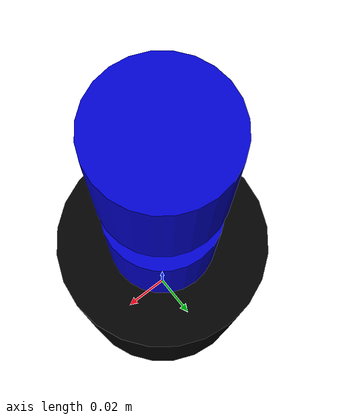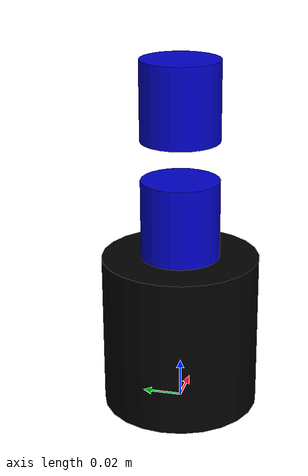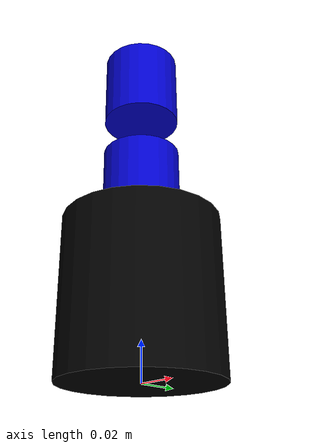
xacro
<?xml version="1.0"?>
<robot xmlns:xacro="http://www.ros.org/wiki/xacro" name="loader_motor">

    <!-- Constants -->
    <xacro:property name="PI" value="3.1415926535"/>

    <!-- Materials -->
    <material name="black">
        <color rgba="0.0 0.0 0.0 1.0"/>
    </material>
    <material name="blue">
        <color rgba="0.0 0.0 0.8 1.0"/>
    </material>

    <!-- Base Link -->
    <link name="world"/>

    <!-- Motor Mount Link -->
    <link name="motor_mount">
        <visual>
            <geometry>
                <cylinder radius="0.04" length="0.08"/>
            </geometry>
            <material name="black"/>
        </visual>
        <collision>
            <geometry>
                <cylinder radius="0.04" length="0.08"/>
            </geometry>
        </collision>
        <inertial>
            <mass value="0.5"/>
            <inertia ixx="0.001" ixy="0.0" ixz="0.0" iyy="0.001" iyz="0.0" izz="0.001"/>
        </inertial>
    </link>

    <link name="pitch_joint">
        <visual>
            <geometry>
                <cylinder radius="0.02" length="0.04"/>
            </geometry>
            <material name="blue"/>
        </visual>
        <collision>
            <geometry>
                <cylinder radius="0.02" length="0.04"/>
            </geometry>
        </collision>
        <inertial>
            <mass value="0.2"/>
            <inertia ixx="0.0001" ixy="0.0" ixz="0.0" iyy="0.0001" iyz="0.0" izz="0.0001"/>
        </inertial>
    </link>

    <link name="yaw_joint">
        <visual>
            <geometry>
                <cylinder radius="0.02" length="0.04"/>
            </geometry>
            <material name="blue"/>
        </visual>
        <collision>
            <geometry>
                <cylinder radius="0.02" length="0.04"/>
            </geometry>
        </collision>
        <inertial>
            <mass value="0.2"/>
            <inertia ixx="0.0001" ixy="0.0" ixz="0.0" iyy="0.0001" iyz="0.0" izz="0.0001"/>
        </inertial>
    </link>

    <joint name="world_to_mount" type="fixed">
        <parent link="world"/>
        <child link="motor_mount"/>
        <origin xyz="0 0 0.04" rpy="0 0 0"/>
    </joint>

    <joint name="pitch_joint" type="revolute">
        <parent link="motor_mount"/>
        <child link="pitch_joint"/>
        <origin xyz="0 0 0.06" rpy="0 0 0"/>
        <axis xyz="0 0 1"/>
        <limit lower="-${PI}" upper="${PI}" effort="1000" velocity="10"/>
    </joint>

    <joint name="yaw_joint" type="revolute">
        <parent link="motor_mount"/>
        <child link="yaw_joint"/>
        <origin xyz="0 0 0.12" rpy="0 0 0"/>
        <axis xyz="0 0 1"/>
        <limit lower="-${PI}" upper="${PI}" effort="1000" velocity="10"/>
    </joint>

    <ros2_control name="TideHardwareInterface" type="system">
        <hardware>
            <plugin>tide_hw_interface/TideHardwareInterface</plugin>
            <param name="enable_virtual_control">true</param>
            <param name="need_calibration">false</param>
            <param name="can_device_count">1</param>
        </hardware>

        <joint name="pitch_joint">
            <param name="can_bus">can0</param>
            <param name="tx_id">2</param>
            <param name="offset">1626</param>
            <param name="motor_type">GM6020</param>

            <command_interface name="position"></command_interface>

            <state_interface name="position"/>
            <state_interface name="velocity"/>
            <state_interface name="effort"/>
        </joint>

        <joint name="yaw_joint">
            <param name="can_bus">can0</param>
            <param name="tx_id">1</param>
            <param name="offset">6758</param>
            <param name="motor_type">GM6020</param>

            <command_interface name="position"></command_interface>

            <state_interface name="position"/>
            <state_interface name="velocity"/>
            <state_interface name="effort"/>
        </joint>

    </ros2_control>

</robot>
